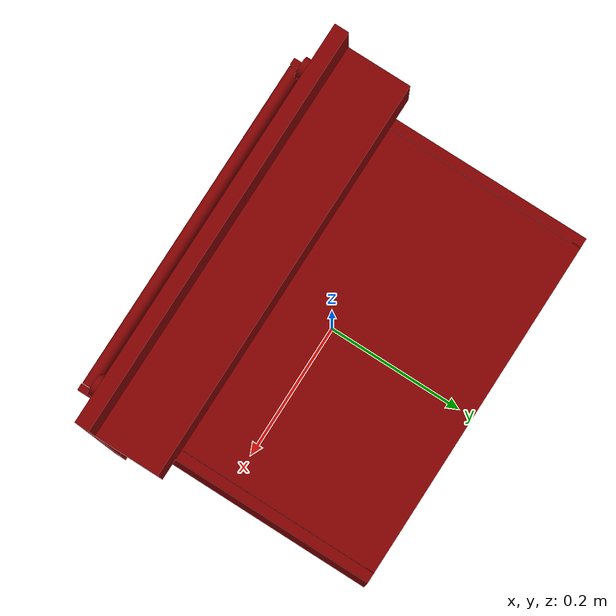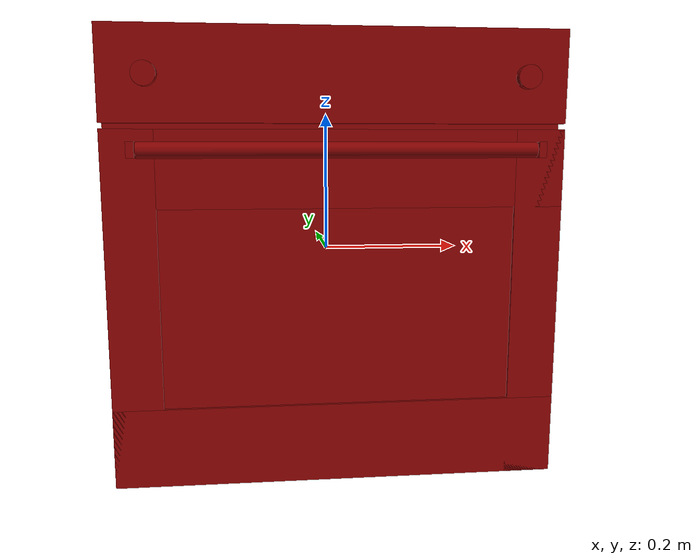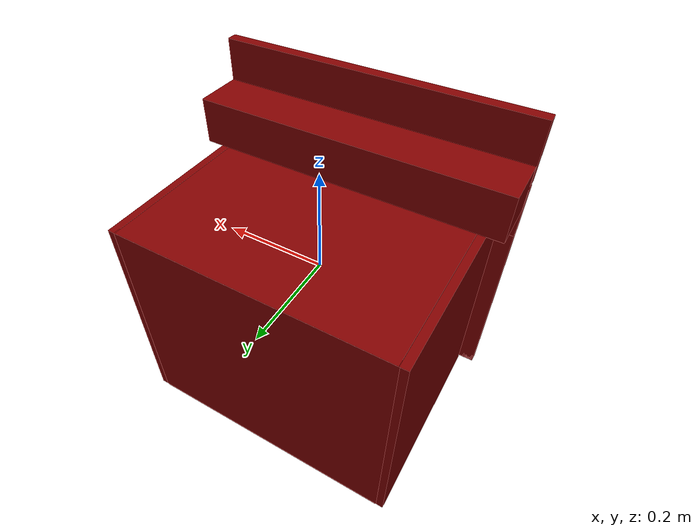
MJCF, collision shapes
<mujoco model="model">
  <compiler angle="radian"/>
  <asset>
    <mesh file="visuals/Body001.obj" name="Body001_vis"/>
    <mesh file="visuals/Door001.obj" name="Door001_vis"/>
    <mesh file="visuals/Door001_Clear.obj" name="Door001_Clear_vis"/>
    <mesh file="visuals/Knob001.obj" name="Knob001_vis"/>
    <mesh file="visuals/Knob002.obj" name="Knob002_vis"/>
    <mesh file="visuals/Shelf001.obj" name="Shelf001_vis"/>
    <mesh file="visuals/Shelf002.obj" name="Shelf002_vis"/>
    <texture file="visuals/T_BC001.png" name="Body001_material" type="2d"/>
    <material name="Body001_material" rgba="1 1 1 1.0" texture="Body001_material" shininess="0.141421377658844" specular="0.3103448502657381"/>
    <texture file="visuals/T_BC001.png" name="Door001_material" type="2d"/>
    <material name="Door001_material" rgba="1 1 1 1.0" texture="Door001_material" shininess="0.141421377658844" specular="0.3103448502657381"/>
    <texture file="visuals/T_BC001.png" name="Door001_Clear_material" type="2d"/>
    <material name="Door001_Clear_material" rgba="1 1 1 0.6456692814826965" texture="Door001_Clear_material" shininess="0.5" specular="0.3103448502657381"/>
    <texture file="visuals/T_BC001.png" name="Knob001_material" type="2d"/>
    <material name="Knob001_material" rgba="1 1 1 1.0" texture="Knob001_material" shininess="0.141421377658844" specular="0.3103448502657381"/>
    <texture file="visuals/T_BC001.png" name="Knob002_material" type="2d"/>
    <material name="Knob002_material" rgba="1 1 1 1.0" texture="Knob002_material" shininess="0.141421377658844" specular="0.3103448502657381"/>
    <texture file="visuals/T_BC001.png" name="Shelf001_material" type="2d"/>
    <material name="Shelf001_material" rgba="1 1 1 1.0" texture="Shelf001_material" shininess="0.141421377658844" specular="0.3103448502657381"/>
    <texture file="visuals/T_BC001.png" name="Shelf002_material" type="2d"/>
    <material name="Shelf002_material" rgba="1 1 1 1.0" texture="Shelf002_material" shininess="0.141421377658844" specular="0.3103448502657381"/>
  </asset>
  <default>
    <default class="visual">
      <geom conaffinity="0" contype="0" group="1" type="mesh"/>
    </default>
    <default class="collision">
      <geom group="0" rgba="0.5 0 0 0.5"/>
    </default>
    <default class="spawn">
      <geom group="0" rgba="1 1 1 0.5" contype="0" conaffinity="0"/>
      <site group="0" rgba="1 1 1 0.5"/>
    </default>
    <default class="region">
      <geom group="1" conaffinity="0" contype="0" rgba="0 1 0 0"/>
    </default>
  </default>
  <worldbody>
    <body>
      <body name="object">
        <geom mesh="Body001_vis" type="mesh" solimp="0.998 0.998 0.001" solref="0.001 1" density="100" friction="0.95 0.3 0.1" class="visual" material="Body001_material"/>
        <geom class="collision" type="box" pos="-0.2557266056537628 0.029321052134037018 -0.08142778277397156" size="0.007219076156616211 0.19212980568408966 0.2130533903837204" quat="1.0 0.0 0.0 0.0"/>
        <geom class="collision" type="box" pos="-6.509595550596714e-06 -0.1163046732544899 0.17706026136875153" size="0.2923739552497864 0.04649493098258972 0.043837908655405045" quat="1.0 0.0 0.0 0.0"/>
        <geom class="collision" type="box" pos="-2.9103830456733704e-11 -0.17321911454200745 0.24082490801811218" size="0.2932053804397583 0.010303128510713577 0.05880128592252731" quat="1.0 0.0 0.0 0.0"/>
        <geom class="collision" type="box" pos="0.2545583248138428 0.029321052134037018 -0.08142778277397156" size="0.007219076156616211 0.19212980568408966 0.2130533903837204" quat="1.0 0.0 0.0 0.0"/>
        <geom class="collision" type="box" pos="-0.0002587692579254508 0.2155100405216217 -0.08142778277397156" size="0.2494407445192337 0.005964251700788736 0.2130533903837204" quat="1.0 0.0 0.0 0.0"/>
        <geom class="collision" type="box" pos="-0.0005369999562390149 0.029321052134037018 -0.29008376598358154" size="0.24735546112060547 0.19212980568408966 0.006446285638958216" quat="1.0 0.0 0.0 0.0"/>
        <geom class="collision" type="box" pos="-0.0005370043218135834 0.029321052134037018 0.12525540590286255" size="0.24735546112060547 0.19212980568408966 0.006446285638958216" quat="1.0 0.0 0.0 0.0"/>
        <geom class="collision" type="box" pos="-0.23759418725967407 0.018307354301214218 0.011513151228427887" size="0.017211025580763817 0.1721840351819992 0.007144071627408266" quat="1.0 0.0 0.0 0.0"/>
        <geom class="collision" type="box" pos="0.2374390959739685 0.018307354301214218 0.011513151228427887" size="0.017211025580763817 0.1721840351819992 0.007144071627408266" quat="1.0 0.0 0.0 0.0"/>
        <geom class="collision" type="box" pos="0.2374390959739685 0.018307354301214218 -0.1430685669183731" size="0.017211025580763817 0.1721840351819992 0.007144071627408266" quat="1.0 0.0 0.0 0.0"/>
        <geom class="collision" type="box" pos="-0.23759418725967407 0.018307354301214218 -0.1430685669183731" size="0.017211025580763817 0.1721840351819992 0.007144071627408266" quat="1.0 0.0 0.0 0.0"/>
        <body name="Door001">
          <joint axis="1.0 0.0 0.0" pos="0.0006216343608684838 -0.1831049919128418 -0.29941368103027344" limited="true" name="Door001_joint" range="0.0 1.15" type="hinge" damping="5" frictionloss="1" armature=".01" stiffness="0.05" springref="-0.1"/>
          <geom mesh="Door001_vis" type="mesh" solimp="0.998 0.998 0.001" solref="0.001 1" density="100" friction="0.95 0.3 0.1" class="visual" material="Door001_material"/>
          <geom class="collision" type="cylinder" pos="-8.794665336608887e-05 -0.21169334650039673 0.14926202595233917" size="0.009907918982207775 0.24421831965446472" quat="0.4999999701976776 0.5 0.5 0.5"/>
          <geom class="collision" type="box" pos="-1.2456439435482025e-08 -0.17467117309570312 -0.23719945549964905" size="0.2932053804397583 0.008851069957017899 0.052889686077833176" quat="1.0 0.0 0.0 0.0"/>
          <geom class="collision" type="box" pos="-0.25014397501945496 -0.20337994396686554 0.14951643347740173" size="0.004824848845601082 0.017637573182582855 0.009651458822190762" quat="1.0 0.0 0.0 0.0"/>
          <geom class="collision" type="box" pos="0.250265508890152 -0.20337994396686554 0.14951643347740173" size="0.004824848845601082 0.017637573182582855 0.009651458822190762" quat="1.0 0.0 0.0 0.0"/>
          <geom class="collision" type="box" pos="-0.26039251685142517 -0.17467117309570312 -0.05768945813179016" size="0.032812878489494324 0.008851069957017899 0.23239968717098236" quat="1.0 0.0 0.0 0.0"/>
          <geom class="collision" type="box" pos="-1.2456439435482025e-08 -0.17467117309570312 0.12527859210968018" size="0.2932053804397583 0.008851069957017899 0.049431636929512024" quat="1.0 0.0 0.0 0.0"/>
          <geom class="collision" type="box" pos="0.2616102993488312 -0.17467117309570312 -0.05768945813179016" size="0.03159508854150772 0.008851069957017899 0.23239968717098236" quat="1.0 0.0 0.0 0.0"/>
          <body name="Door001_Clear">
            <geom mesh="Door001_Clear_vis" type="mesh" solimp="0.998 0.998 0.001" solref="0.001 1" density="100" friction="0.95 0.3 0.1" class="visual" material="Door001_Clear_material"/>
            <geom class="collision" type="box" pos="-1.990207238122821e-05 -0.17772334814071655 -0.05382537841796875" size="0.23479610681533813 0.0013434074353426695 0.13202042877674103" quat="1.0 0.0 0.0 0.0"/>
          </body>
        </body>
        <body name="Knob001">
          <joint axis="0.0 1.0 0.0" pos="-0.23521986603736877 -0.1900043934583664 0.2394142597913742" limited="true" name="Knob001_joint" range="0.0 4.014257279586958" type="hinge" damping="0.05" armature="0.001"/>
          <geom mesh="Knob001_vis" type="mesh" solimp="0.998 0.998 0.001" solref="0.001 1" density="100" friction="0.95 0.3 0.1" class="visual" material="Knob001_material"/>
          <geom class="collision" type="cylinder" pos="-0.2349817454814911 -0.19150155782699585 0.23961703479290009" size="0.01495257019996643 0.005839786492288113" quat="0.7071068286895752 0.7071067690849304 0.0 0.0"/>
        </body>
        <body name="Knob002">
          <joint axis="0.0 1.0 0.0" pos="0.23979756236076355 -0.1900043934583664 0.2394142597913742" limited="true" name="Knob002_joint" range="0.0 3.2288591161895095" type="hinge" damping="0.05" armature="0.001"/>
          <geom mesh="Knob002_vis" type="mesh" solimp="0.998 0.998 0.001" solref="0.001 1" density="100" friction="0.95 0.3 0.1" class="visual" material="Knob002_material"/>
          <geom class="collision" type="cylinder" pos="0.23987719416618347 -0.19116546213626862 0.23961703479290009" size="0.01495257019996643 0.005529541056603193" quat="0.7071068286895752 0.7071067690849304 0.0 0.0"/>
        </body>
        <body name="Shelf001">
          <joint axis="0.0 -1.0 0.0" pos="1.2777924212059588e-06 0.03167494758963585 0.022441715002059937" limited="true" name="Shelf001_joint" range="0.0 0.25" type="slide" damping="1" frictionloss="1" armature=".01" stiffness="0.05"/>
          <geom mesh="Shelf001_vis" type="mesh" solimp="0.998 0.998 0.001" solref="0.001 1" density="100" friction="0.95 0.3 0.1" class="visual" material="Shelf001_material"/>
          <geom class="collision" type="box" pos="-0.00010812358232215047 0.030966006219387054 0.02371634542942047" size="0.2379271686077118 0.1573076695203781 0.002953834133222699" quat="1.0 0.0 0.0 0.0"/>
        </body>
        <body name="Shelf002">
          <joint axis="0.0 -1.0 0.0" pos="1.359748807772121e-06 0.009698130190372467 -0.13216164708137512" limited="true" name="Shelf002_joint" range="0.0 0.25" type="slide" damping="1" frictionloss="1" armature=".01" stiffness="0.05"/>
          <geom mesh="Shelf002_vis" type="mesh" solimp="0.998 0.998 0.001" solref="0.001 1" density="100" friction="0.95 0.3 0.1" class="visual" material="Shelf002_material"/>
          <geom class="collision" type="box" pos="-0.0005146542680449784 0.00798073597252369 -0.13109521567821503" size="0.23827512562274933 0.12442532181739807 0.0027252323925495148" quat="1.0 0.0 0.0 0.0"/>
        </body>
        <geom class="region" name="reg_main" type="box" pos="0.0 0.018976017832756042 0.0" size="0.2932053804397583 0.20249825716018677 0.2996262013912201"/>
        <geom class="region" name="reg_int" type="box" pos="-0.00048028677701950073 0.022313199937343597 -0.0817028246819973" size="0.24857208877801895 0.18341296166181564 0.20035028830170631"/>
      </body>
    </body>
  </worldbody>
  <actuator>
    <motor name="Door001_joint_actuator" joint="Door001_joint" gear="50"/>
    <motor name="Knob001_joint_actuator" joint="Knob001_joint" gear="15"/>
    <motor name="Knob002_joint_actuator" joint="Knob002_joint" gear="15"/>
    <motor name="Shelf001_joint_actuator" joint="Shelf001_joint" gear="10"/>
    <motor name="Shelf002_joint_actuator" joint="Shelf002_joint" gear="10"/>
  </actuator>
</mujoco>
